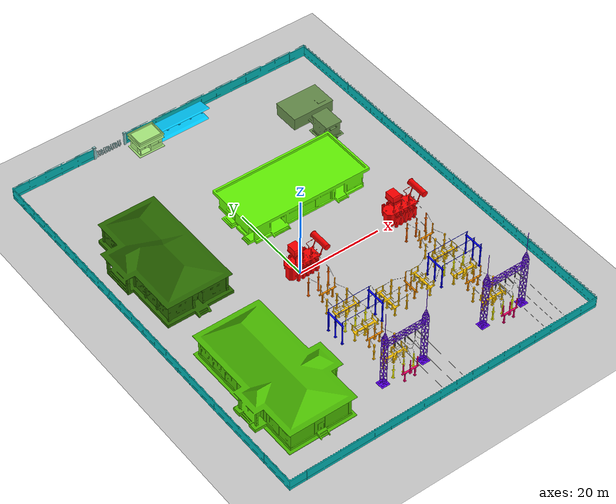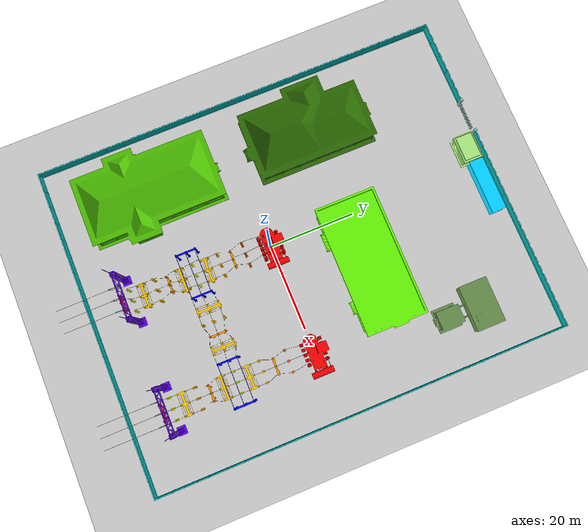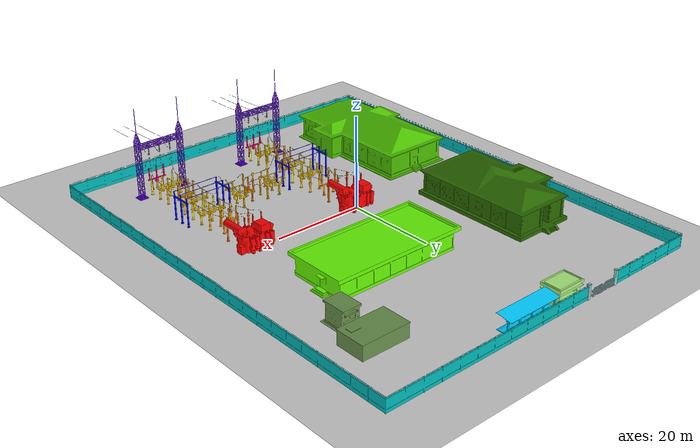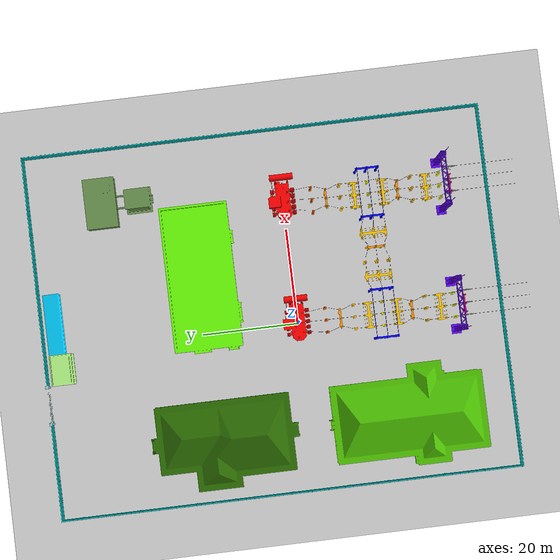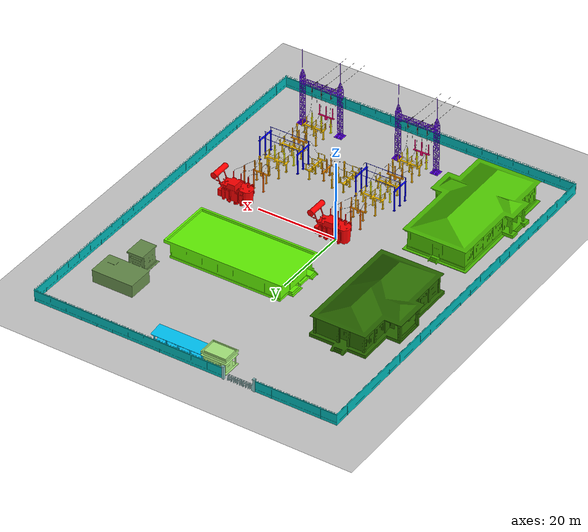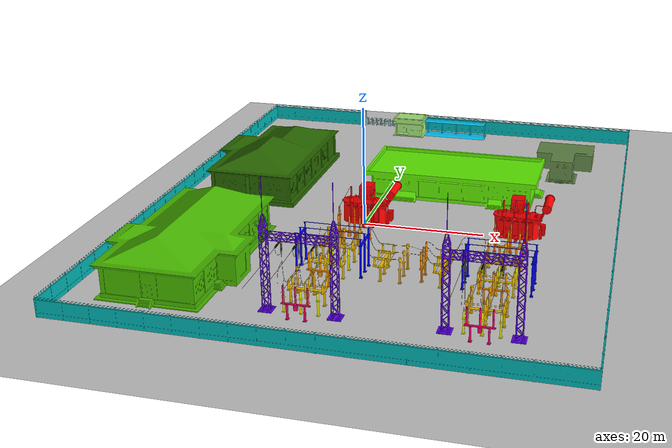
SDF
<sdf version="1.8">
 <world name="empty_world">
  <scene><grid>false</grid></scene>
  <physics name="1ms" type="ignored">
   <max_step_size>0.002</max_step_size>
   <real_time_factor>1.0</real_time_factor>
  </physics>
  <plugin filename="ignition-gazebo-physics-system" name="ignition::gazebo::systems::Physics"/>
  <plugin filename="ignition-gazebo-user-commands-system" name="ignition::gazebo::systems::UserCommands"/>
  <plugin filename="ignition-gazebo-scene-broadcaster-system" name="ignition::gazebo::systems::SceneBroadcaster"/>
  <model name="ground_plane">
   <static>1</static>
   <link name="link">
    <collision name="collision">
     <geometry><plane><normal>0 0 1</normal><size>150 150</size></plane></geometry>
    </collision>
    <visual name="visual">
     <geometry><plane><normal>0 0 1</normal><size>150 150</size></plane></geometry>
     <material>
      <ambient>0.8 0.8 0.8 1</ambient>
      <diffuse>0.8 0.8 0.8 1</diffuse>
      <specular>0.8 0.8 0.8 1</specular>
     </material>
    </visual>
   </link>
  </model>
  <light name="sun" type="directional">
   <pose>0 0 10 0 -0 0</pose>
   <diffuse>0.8 0.8 0.8 1</diffuse>
   <specular>0.2 0.2 0.2 1</specular>
   <attenuation>
    <range>1000</range>
    <constant>0.90000000000000002</constant>
    <linear>0.01</linear>
    <quadratic>0.001</quadratic>
   </attenuation>
   <direction>-0.5 0.1 -0.9</direction>
   <spot><inner_angle>0</inner_angle><outer_angle>0</outer_angle><falloff>0</falloff></spot>
  </light>
  <include><uri>model://Transformer</uri><name>Transformer_1</name></include>
  <include><uri>model://Transformer</uri><name>Transformer_2</name><pose>25.24 0 0 0 0 0</pose></include>
  <include>
   <uri>model://Electrical_Array_1</uri>
   <name>Electrical_Array_1_1</name>
   <pose>0 -5.92 0 0 0 0</pose>
  </include>
  <include>
   <uri>model://Electrical_Array_1</uri>
   <name>Electrical_Array_1_2</name>
   <pose>25.24 -5.92 0 0 0 0</pose>
  </include>
  <include>
   <uri>model://Electrical_Array_2</uri>
   <name>Electrical_Array_2_1</name>
   <pose>0 -8.92 0 0 0 0</pose>
  </include>
  <include>
   <uri>model://Electrical_Array_2</uri>
   <name>Electrical_Array_2_2</name>
   <pose>25.24 -8.92 0 0 0 0</pose>
  </include>
  <include>
   <uri>model://Electrical_Array_2</uri>
   <name>Electrical_Array_2_3</name>
   <pose>0 -23.92 0 0 0 0</pose>
  </include>
  <include>
   <uri>model://Electrical_Array_2</uri>
   <name>Electrical_Array_2_4</name>
   <pose>25.24 -23.92 0 0 0 0</pose>
  </include>
  <include>
   <uri>model://Electrical_Array_2</uri>
   <name>Electrical_Array_2_5</name>
   <pose>14 -17.92 0 0 0 1.5708</pose>
  </include>
  <include>
   <uri>model://Electrical_Array_3</uri>
   <name>Electrical_Array_3_1</name>
   <pose>0 -11.92 0 0 0 0</pose>
  </include>
  <include>
   <uri>model://Electrical_Array_3</uri>
   <name>Electrical_Array_3_2</name>
   <pose>25.24 -11.92 0 0 0 0</pose>
  </include>
  <include>
   <uri>model://Electrical_Array_3</uri>
   <name>Electrical_Array_3_3</name>
   <pose>0 -26.92 0 0 0 0</pose>
  </include>
  <include>
   <uri>model://Electrical_Array_3</uri>
   <name>Electrical_Array_3_4</name>
   <pose>25.24 -26.92 0 0 0 0</pose>
  </include>
  <include>
   <uri>model://Electrical_Array_3</uri>
   <name>Electrical_Array_3_5</name>
   <pose>11 -17.92 0 0 0 1.5708</pose>
  </include>
  <include>
   <uri>model://Electrical_Array_4</uri>
   <name>Electrical_Array_4_1</name>
   <pose>0 -14.92 0 0 0 0</pose>
  </include>
  <include>
   <uri>model://Electrical_Array_4</uri>
   <name>Electrical_Array_4_2</name>
   <pose>25.24 -14.92 0 0 0 0</pose>
  </include>
  <include>
   <uri>model://Electrical_Array_4</uri>
   <name>Electrical_Array_4_3</name>
   <pose>0 -20.92 0 0 0 0</pose>
  </include>
  <include>
   <uri>model://Electrical_Array_4</uri>
   <name>Electrical_Array_4_4</name>
   <pose>25.24 -20.92 0 0 0 0</pose>
  </include>
  <include>
   <uri>model://Electrical_Array_4</uri>
   <name>Electrical_Array_4_5</name>
   <pose>0 -29.92 0 0 0 0</pose>
  </include>
  <include>
   <uri>model://Electrical_Array_4</uri>
   <name>Electrical_Array_4_6</name>
   <pose>25.24 -29.92 0 0 0 0</pose>
  </include>
  <include>
   <uri>model://Electrical_Array_4</uri>
   <name>Electrical_Array_4_7</name>
   <pose>8 -17.92 0 0 0 1.5708</pose>
  </include>
  <include>
   <uri>model://Electrical_Array_4</uri>
   <name>Electrical_Array_4_8</name>
   <pose>17 -17.92 0 0 0 1.5708</pose>
  </include>
  <include>
   <uri>model://Electrical_Array_5</uri>
   <name>Electrical_Array_5_1</name>
   <pose>0 -17.92 0 0 0 0</pose>
  </include>
  <include>
   <uri>model://Electrical_Array_5</uri>
   <name>Electrical_Array_5_2</name>
   <pose>25.24 -17.92 0 0 0 0</pose>
  </include>
  <include>
   <uri>model://Electrical_Array_5</uri>
   <name>Electrical_Array_5_3</name>
   <pose>0 -32.92 0 0 0 0</pose>
  </include>
  <include>
   <uri>model://Electrical_Array_5</uri>
   <name>Electrical_Array_5_4</name>
   <pose>25.24 -32.92 0 0 0 0</pose>
  </include>
  <include>
   <uri>model://Electrical_Array_6</uri>
   <name>Electrical_Array_6_1</name>
   <pose>0 -34.92 0 0 0 0</pose>
  </include>
  <include>
   <uri>model://Electrical_Array_6</uri>
   <name>Electrical_Array_6_2</name>
   <pose>25.24 -34.92 0 0 0 0</pose>
  </include>
  <include>
   <uri>model://Electrical_Array_7</uri>
   <name>Electrical_Array_7_1</name>
   <pose>0 -17.92 0 0 0 0</pose>
  </include>
  <include>
   <uri>model://Electrical_Array_7</uri>
   <name>Electrical_Array_7_2</name>
   <pose>25.24 -17.92 0 0 0 0</pose>
  </include>
  <include>
   <uri>model://Electrical_Array_8</uri>
   <name>Electrical_Array_8_1</name>
   <pose>0 -32.92 0 0 0 0</pose>
  </include>
  <include>
   <uri>model://Electrical_Array_8</uri>
   <name>Electrical_Array_8_2</name>
   <pose>25.24 -32.92 0 0 0 0</pose>
  </include>
  <include>
   <uri>model://Electrical_Wires_1</uri>
   <name>Electrical_Wires_1_1</name>
   <pose>0 -17.92 3.6 0 0 0</pose>
  </include>
  <include>
   <uri>model://Electrical_Wires_1</uri>
   <name>Electrical_Wires_1_2</name>
   <pose>25.24 -17.92 3.6 0 0 0</pose>
  </include>
  <include>
   <uri>model://Electrical_Wires_2</uri>
   <name>Electrical_Wires_2</name>
   <pose>11 -17.92 3.69 0 0 1.5708</pose>
  </include>
  <include><uri>model://Control_Room</uri><name>Control Room</name><pose>11.9 18.91 0 0 0 0</pose></include>
  <include>
   <uri>model://Electrical_Building_1</uri>
   <name>Electrical_Building_1</name>
   <pose>-21.9 -20.485 0 0 0 0</pose>
  </include>
  <include>
   <uri>model://Electrical_Building_2</uri>
   <name>Electrical_Building_2</name>
   <pose>-21.9 17.726 0 0 0 0</pose>
  </include>
  <include>
   <uri>model://Electrical_Shack</uri>
   <name>Electrical_Shack</name>
   <pose>29.834 34.675 0 0 0 0</pose>
  </include>
  <include>
   <uri>model://Security_Booth</uri>
   <name>Security_Booth</name>
   <pose>-3.712 49.844 0 0 0 0</pose>
  </include>
  <include><uri>model://Parking_Area</uri><name>Parking_Area</name><pose>5.788 50.544 0 0 0 0</pose></include>
  <include><uri>model://Fence</uri><name>Fence</name><pose>3.2 5.285 0 0 0 0</pose></include>
  <include><uri>model://Gate</uri><name>Gate</name><pose>3.2 5.285 0 0 0 0</pose></include>
 </world>
</sdf>

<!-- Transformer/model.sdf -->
<sdf version="1.8">
  <model name="Transformer">
    <static>true</static>
    <link name="link">
      <collision name="collision">
        <geometry>
          <mesh>
            <uri>model://Transformer/Meshes/Transformer.stl</uri>
            <scale>0.001 0.001 0.001</scale>
          </mesh>
        </geometry>
      </collision>

      <visual name="visual">
        <geometry>
          <mesh>
            <uri>model://Transformer/Meshes/Transformer.stl</uri>
            <scale>0.001 0.001 0.001</scale>
          </mesh>
        </geometry>
        <material>
          <diffuse>1.0 0.0 0.0 1.0</diffuse>
        </material>
      </visual>
    </link>
  </model>
</sdf>

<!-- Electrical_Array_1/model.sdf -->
<sdf version="1.8">
  <model name="Electrical_Array_1">
    <static>true</static>
    <link name="link">
      <collision name="collision">
        <geometry>
          <mesh>
            <uri>model://Electrical_Array_1/Meshes/Electrical_Array_1.stl</uri>
            <scale>0.001 0.001 0.001</scale>
          </mesh>
        </geometry>
      </collision>

      <visual name="visual">
        <geometry>
          <mesh>
            <uri>model://Electrical_Array_1/Meshes/Electrical_Array_1.stl</uri>
            <scale>0.001 0.001 0.001</scale>
          </mesh>
        </geometry>
        <material>
          <diffuse>1.0 0.39 0.0 1.0</diffuse>
        </material>
      </visual>
    </link>
  </model>
</sdf>

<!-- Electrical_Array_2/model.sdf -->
<sdf version="1.8">
  <model name="Electrical_Array_2">
    <static>true</static>
    <link name="link">
      <collision name="collision">
        <geometry>
          <mesh>
            <uri>model://Electrical_Array_2/Meshes/Electrical_Array_2.stl</uri>
            <scale>0.001 0.001 0.001</scale>
          </mesh>
        </geometry>
      </collision>

      <visual name="visual">
        <geometry>
          <mesh>
            <uri>model://Electrical_Array_2/Meshes/Electrical_Array_2.stl</uri>
            <scale>0.001 0.001 0.001</scale>
          </mesh>
        </geometry>
        <material>
          <diffuse>1.0 0.57 0.0 1.0</diffuse>
        </material>
      </visual>
    </link>
  </model>
</sdf>

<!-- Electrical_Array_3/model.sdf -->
<sdf version="1.8">
  <model name="Electrical_Array_3">
    <static>true</static>
    <link name="link">
      <collision name="collision">
        <geometry>
          <mesh>
            <uri>model://Electrical_Array_3/Meshes/Electrical_Array_3.stl</uri>
            <scale>0.001 0.001 0.001</scale>
          </mesh>
        </geometry>
      </collision>

      <visual name="visual">
        <geometry>
          <mesh>
            <uri>model://Electrical_Array_3/Meshes/Electrical_Array_3.stl</uri>
            <scale>0.001 0.001 0.001</scale>
          </mesh>
        </geometry>
        <material>
          <diffuse>1.0 0.71 0.0 1.0</diffuse>
        </material>
      </visual>
    </link>
  </model>
</sdf>

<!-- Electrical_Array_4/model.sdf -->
<sdf version="1.8">
  <model name="Electrical_Array_4">
    <static>true</static>
    <link name="link">
      <collision name="collision">
        <geometry>
          <mesh>
            <uri>model://Electrical_Array_4/Meshes/Electrical_Array_4.stl</uri>
            <scale>0.001 0.001 0.001</scale>
          </mesh>
        </geometry>
      </collision>

      <visual name="visual">
        <geometry>
          <mesh>
            <uri>model://Electrical_Array_4/Meshes/Electrical_Array_4.stl</uri>
            <scale>0.001 0.001 0.001</scale>
          </mesh>
        </geometry>
        <material>
          <diffuse>1.0 0.78 0.0 1.0</diffuse>
        </material>
      </visual>
    </link>
  </model>
</sdf>

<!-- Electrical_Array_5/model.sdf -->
<sdf version="1.8">
  <model name="Electrical_Array_5">
    <static>true</static>
    <link name="link">
      <collision name="collision">
        <geometry>
          <mesh>
            <uri>model://Electrical_Array_5/Meshes/Electrical_Array_5.stl</uri>
            <scale>0.001 0.001 0.001</scale>
          </mesh>
        </geometry>
      </collision>

      <visual name="visual">
        <geometry>
          <mesh>
            <uri>model://Electrical_Array_5/Meshes/Electrical_Array_5.stl</uri>
            <scale>0.001 0.001 0.001</scale>
          </mesh>
        </geometry>
        <material>
          <diffuse>1.0 1.0 0.0 1.0</diffuse>
        </material>
      </visual>
    </link>
  </model>
</sdf>

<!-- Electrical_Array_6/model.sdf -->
<sdf version="1.8">
  <model name="Electrical_Array_6">
    <static>true</static>
    <link name="link">
      <collision name="collision">
        <geometry>
          <mesh>
            <uri>model://Electrical_Array_6/Meshes/Electrical_Array_6.stl</uri>
            <scale>0.001 0.001 0.001</scale>
          </mesh>
        </geometry>
      </collision>

      <visual name="visual">
        <geometry>
          <mesh>
            <uri>model://Electrical_Array_6/Meshes/Electrical_Array_6.stl</uri>
            <scale>0.001 0.001 0.001</scale>
          </mesh>
        </geometry>
        <material>
          <diffuse>1.0 0.0 0.43 1.0</diffuse>
        </material>
      </visual>
    </link>
  </model>
</sdf>

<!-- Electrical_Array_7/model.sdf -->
<sdf version="1.8">
  <model name="Electrical_Array_7">
    <static>true</static>
    <link name="link">
      <collision name="collision">
        <geometry>
          <mesh>
            <uri>model://Electrical_Array_7/Meshes/Electrical_Array_7.stl</uri>
            <scale>0.001 0.001 0.001</scale>
          </mesh>
        </geometry>
      </collision>

      <visual name="visual">
        <geometry>
          <mesh>
            <uri>model://Electrical_Array_7/Meshes/Electrical_Array_7.stl</uri>
            <scale>0.001 0.001 0.001</scale>
          </mesh>
        </geometry>
        <material>
          <diffuse>0.0 0.0 1.0 1.0</diffuse>
        </material>
      </visual>
    </link>
  </model>
</sdf>

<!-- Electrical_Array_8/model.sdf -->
<sdf version="1.8">
  <model name="Electrical_Array_8">
    <static>true</static>
    <link name="link">
      <collision name="collision">
        <geometry>
          <mesh>
            <uri>model://Electrical_Array_8/Meshes/Electrical_Array_8.stl</uri>
            <scale>0.001 0.001 0.001</scale>
          </mesh>
        </geometry>
      </collision>

      <visual name="visual">
        <geometry>
          <mesh>
            <uri>model://Electrical_Array_8/Meshes/Electrical_Array_8.stl</uri>
            <scale>0.001 0.001 0.001</scale>
          </mesh>
        </geometry>
        <material>
          <diffuse>0.39 0.0 1.0 1.0</diffuse>
        </material>
      </visual>
    </link>
  </model>
</sdf>

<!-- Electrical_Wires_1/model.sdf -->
<sdf version="1.8">
  <model name="Electrical_Wires_1">
    <static>true</static>
    <link name="link">
      <collision name="collision">
        <geometry>
          <mesh>
            <uri>model://Electrical_Wires_1/Meshes/Electrical_Wires_1.stl</uri>
            <scale>0.001 0.001 0.001</scale>
          </mesh>
        </geometry>
      </collision>

      <visual name="visual">
        <geometry>
          <mesh>
            <uri>model://Electrical_Wires_1/Meshes/Electrical_Wires_1.stl</uri>
            <scale>0.001 0.001 0.001</scale>
          </mesh>
        </geometry>
        <material>
          <diffuse>0.0 0.0 0.0 1.0</diffuse>
        </material>
      </visual>
    </link>
  </model>
</sdf>

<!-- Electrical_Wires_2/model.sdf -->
<sdf version="1.8">
  <model name="Electrical_Wires_2">
    <static>true</static>
    <link name="link">
      <collision name="collision">
        <geometry>
          <mesh>
            <uri>model://Electrical_Wires_2/Meshes/Electrical_Wires_2.stl</uri>
            <scale>0.001 0.001 0.001</scale>
          </mesh>
        </geometry>
      </collision>

      <visual name="visual">
        <geometry>
          <mesh>
            <uri>model://Electrical_Wires_2/Meshes/Electrical_Wires_2.stl</uri>
            <scale>0.001 0.001 0.001</scale>
          </mesh>
        </geometry>
        <material>
          <diffuse>0.0 0.0 0.0 0.8</diffuse>
        </material>
      </visual>
    </link>
  </model>
</sdf>

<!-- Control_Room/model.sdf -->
<sdf version="1.8">
  <model name="Control_Room">
    <static>true</static>
    <link name="link">
      <collision name="collision">
        <geometry>
          <mesh>
            <uri>model://Control_Room/Meshes/Control_Room.stl</uri>
            <scale>0.001 0.001 0.001</scale>
          </mesh>
        </geometry>
      </collision>

      <visual name="visual">
        <geometry>
          <mesh>
            <uri>model://Control_Room/Meshes/Control_Room.stl</uri>
            <scale>0.001 0.001 0.001</scale>
          </mesh>
        </geometry>
        <material>
          <diffuse>0.4 0.98 0.012 1</diffuse>
        </material>
      </visual>
    </link>
  </model>
</sdf>

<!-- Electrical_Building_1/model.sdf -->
<sdf version="1.8">
  <model name="Electrical_Building_1">
    <static>true</static>
    <link name="link">
      <collision name="collision">
        <geometry>
          <mesh>
            <uri>model://Electrical_Building_1/Meshes/Electrical_Building_1.stl</uri>
            <scale>0.001 0.001 0.001</scale>
          </mesh>
        </geometry>
      </collision>

      <visual name="visual">
        <geometry>
          <mesh>
            <uri>model://Electrical_Building_1/Meshes/Electrical_Building_1.stl</uri>
            <scale>0.001 0.001 0.001</scale>
          </mesh>
        </geometry>
        <material>
          <diffuse>0.294 0.741 0 1</diffuse>
        </material>
      </visual>
    </link>
  </model>
</sdf>

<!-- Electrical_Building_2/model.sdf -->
<sdf version="1.8">
  <model name="Electrical_Building_2">
    <static>true</static>
    <link name="link">
      <collision name="collision">
        <geometry>
          <mesh>
            <uri>model://Electrical_Building_2/Meshes/Electrical_Building_2.stl</uri>
            <scale>0.001 0.001 0.001</scale>
          </mesh>
        </geometry>
      </collision>

      <visual name="visual">
        <geometry>
          <mesh>
            <uri>model://Electrical_Building_2/Meshes/Electrical_Building_2.stl</uri>
            <scale>0.001 0.001 0.001</scale>
          </mesh>
        </geometry>
        <material>
          <diffuse>0.161 0.408 0 1</diffuse>
        </material>
      </visual>
    </link>
  </model>
</sdf>

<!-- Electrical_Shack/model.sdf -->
<sdf version="1.8">
  <model name="Electrical_Shack">
    <static>true</static>
    <link name="link">
      <collision name="collision">
        <geometry>
          <mesh>
            <uri>model://Electrical_Shack/Meshes/Electrical_Shack.stl</uri>
            <scale>0.001 0.001 0.001</scale>
          </mesh>
        </geometry>
      </collision>

      <visual name="visual">
        <geometry>
          <mesh>
            <uri>model://Electrical_Shack/Meshes/Electrical_Shack.stl</uri>
            <scale>0.001 0.001 0.001</scale>
          </mesh>
        </geometry>
        <material>
          <diffuse>0.4 0.553 0.294 1</diffuse>
        </material>
      </visual>
    </link>
  </model>
</sdf>

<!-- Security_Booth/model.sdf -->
<sdf version="1.8">
  <model name="Security_Booth">
    <static>true</static>
    <link name="link">
      <collision name="collision">
        <geometry>
          <mesh>
            <uri>model://Security_Booth/Meshes/Security_Booth.stl</uri>
            <scale>0.001 0.001 0.001</scale>
          </mesh>
        </geometry>
      </collision>

      <visual name="visual">
        <geometry>
          <mesh>
            <uri>model://Security_Booth/Meshes/Security_Booth.stl</uri>
            <scale>0.001 0.001 0.001</scale>
          </mesh>
        </geometry>
        <material>
          <diffuse>0.6745 0.9333 0.5019 1</diffuse>
        </material>
      </visual>
    </link>
  </model>
</sdf>

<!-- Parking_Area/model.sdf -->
<sdf version="1.8">
  <model name="Parking_Area">
    <static>true</static>
    <link name="link">
      <collision name="collision">
        <geometry>
          <mesh>
            <uri>model://Parking_Area/Meshes/Parking_Area.stl</uri>
            <scale>0.001 0.001 0.001</scale>
          </mesh>
        </geometry>
      </collision>

      <visual name="visual">
        <geometry>
          <mesh>
            <uri>model://Parking_Area/Meshes/Parking_Area.stl</uri>
            <scale>0.001 0.001 0.001</scale>
          </mesh>
        </geometry>
        <material>
          <diffuse>0 0.8 1 1</diffuse>
        </material>
      </visual>
    </link>
  </model>
</sdf>

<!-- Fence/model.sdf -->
<sdf version="1.8">
  <model name="Fence">
    <static>true</static>
    <link name="link">
      <collision name="collision">
        <geometry>
          <mesh>
            <uri>model://Fence/Meshes/Fence.stl</uri>
            <scale>0.001 0.001 0.001</scale>
          </mesh>
        </geometry>
      </collision>

      <visual name="visual">
        <geometry>
          <mesh>
            <uri>model://Fence/Meshes/Fence.stl</uri>
            <scale>0.001 0.001 0.001</scale>
          </mesh>
        </geometry>
        <material>
          <diffuse>0 0.72157 0.72157 1</diffuse>
        </material>
      </visual>
    </link>
  </model>
</sdf>

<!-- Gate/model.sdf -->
<sdf version="1.8">
  <model name="Gate">
    <static>true</static>
    <link name="link">
      <collision name="collision">
        <geometry>
          <mesh>
            <uri>model://Gate/Meshes/Gate.stl</uri>
            <scale>0.001 0.001 0.001</scale>
          </mesh>
        </geometry>
      </collision>

      <visual name="visual">
        <geometry>
          <mesh>
            <uri>model://Gate/Meshes/Gate.stl</uri>
            <scale>0.001 0.001 0.001</scale>
          </mesh>
        </geometry>
        <material>
          <diffuse>0.56078 0.78431 0.78431 1</diffuse>
        </material>
      </visual>
    </link>
  </model>
</sdf>
